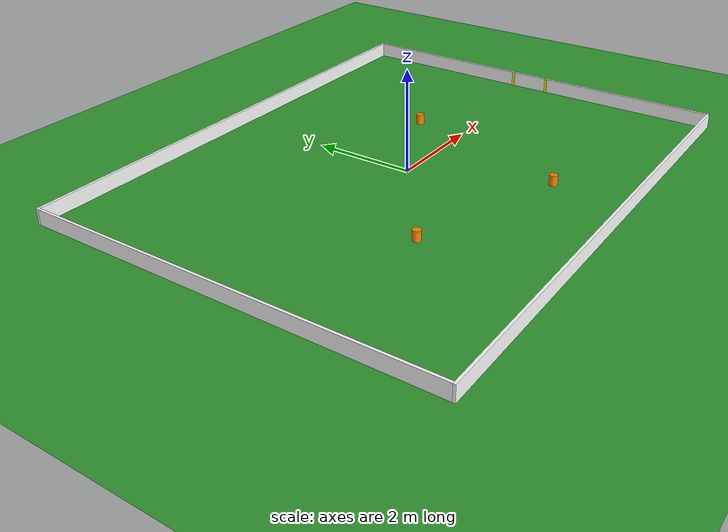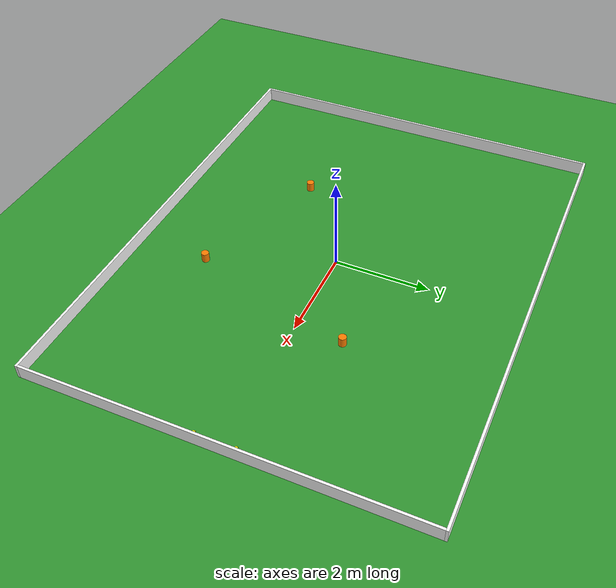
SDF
<?xml version="1.0" ?>
<!--
  RoboCup-style arena for the 3-wheeled omni robot.
  Field: 10 m × 8 m
  Walls are 0.3 m tall white panels.
  A few cylindrical obstacles are placed in the field.
-->
<sdf version="1.9">
  <world name="robocup_field">

    <!-- ─── Physics ──────────────────────────────────────────────── -->
    <physics name="1ms" type="ignored">
      <max_step_size>0.001</max_step_size>
      <real_time_factor>1.0</real_time_factor>
    </physics>

    <!-- ─── Required Gazebo system plugins ───────────────────────── -->
    <plugin filename="gz-sim-physics-system"
            name="gz::sim::systems::Physics"/>
    <plugin filename="gz-sim-user-commands-system"
            name="gz::sim::systems::UserCommands"/>
    <plugin filename="gz-sim-scene-broadcaster-system"
            name="gz::sim::systems::SceneBroadcaster"/>
    <plugin filename="gz-sim-sensors-system"
            name="gz::sim::systems::Sensors">
      <render_engine>ogre2</render_engine>
    </plugin>
    <plugin filename="gz-sim-contact-system"
            name="gz::sim::systems::Contact"/>

    <!-- ─── Lighting ─────────────────────────────────────────────── -->
    <light type="directional" name="sun">
      <cast_shadows>true</cast_shadows>
      <pose>0 0 10 0 0 0</pose>
      <diffuse>0.9 0.9 0.9 1</diffuse>
      <specular>0.3 0.3 0.3 1</specular>
      <direction>-0.5 0.1 -0.9</direction>
    </light>

    <!-- ─── Ground plane (green – RoboCup field) ─────────────────── -->
    <model name="ground_plane">
      <static>true</static>
      <link name="link">
        <collision name="collision">
          <geometry>
            <plane><normal>0 0 1</normal><size>30 30</size></plane>
          </geometry>
          <surface>
            <friction>
              <ode><mu>0.8</mu><mu2>0.8</mu2></ode>
            </friction>
          </surface>
        </collision>
        <visual name="visual">
          <cast_shadows>false</cast_shadows>
          <geometry>
            <plane><normal>0 0 1</normal><size>30 30</size></plane>
          </geometry>
          <material>
            <ambient>0.1 0.5 0.1 1</ambient>
            <diffuse>0.2 0.6 0.2 1</diffuse>
          </material>
        </visual>
      </link>
    </model>

    <!-- ─── Field boundary walls ─────────────────────────────────── -->
    <!-- Field: 10 m × 8 m  →  corners at (±5, ±4)                  -->

    <model name="wall_north">
      <static>true</static>
      <pose>0 4.025 0.15 0 0 0</pose>
      <link name="link">
        <collision name="col"><geometry><box><size>10.1 0.05 0.3</size></box></geometry></collision>
        <visual   name="vis">
          <geometry><box><size>10.1 0.05 0.3</size></box></geometry>
          <material><ambient>1 1 1 1</ambient><diffuse>1 1 1 1</diffuse></material>
        </visual>
      </link>
    </model>

    <model name="wall_south">
      <static>true</static>
      <pose>0 -4.025 0.15 0 0 0</pose>
      <link name="link">
        <collision name="col"><geometry><box><size>10.1 0.05 0.3</size></box></geometry></collision>
        <visual   name="vis">
          <geometry><box><size>10.1 0.05 0.3</size></box></geometry>
          <material><ambient>1 1 1 1</ambient><diffuse>1 1 1 1</diffuse></material>
        </visual>
      </link>
    </model>

    <model name="wall_east">
      <static>true</static>
      <pose>5.025 0 0.15 0 0 0</pose>
      <link name="link">
        <collision name="col"><geometry><box><size>0.05 8.0 0.3</size></box></geometry></collision>
        <visual   name="vis">
          <geometry><box><size>0.05 8.0 0.3</size></box></geometry>
          <material><ambient>1 1 1 1</ambient><diffuse>1 1 1 1</diffuse></material>
        </visual>
      </link>
    </model>

    <model name="wall_west">
      <static>true</static>
      <pose>-5.025 0 0.15 0 0 0</pose>
      <link name="link">
        <collision name="col"><geometry><box><size>0.05 8.0 0.3</size></box></geometry></collision>
        <visual   name="vis">
          <geometry><box><size>0.05 8.0 0.3</size></box></geometry>
          <material><ambient>1 1 1 1</ambient><diffuse>1 1 1 1</diffuse></material>
        </visual>
      </link>
    </model>

    <!-- ─── Cylindrical obstacles (simulate soccer ball / cones) ─── -->
    <model name="obstacle_1">
      <static>true</static>
      <pose>2.0 1.0 0.1 0 0 0</pose>
      <link name="link">
        <collision name="col"><geometry><cylinder><radius>0.08</radius><length>0.2</length></cylinder></geometry></collision>
        <visual   name="vis">
          <geometry><cylinder><radius>0.08</radius><length>0.2</length></cylinder></geometry>
          <material><ambient>1 0.5 0 1</ambient><diffuse>1 0.5 0 1</diffuse></material>
        </visual>
      </link>
    </model>

    <model name="obstacle_2">
      <static>true</static>
      <pose>-2.0 -1.5 0.1 0 0 0</pose>
      <link name="link">
        <collision name="col"><geometry><cylinder><radius>0.08</radius><length>0.2</length></cylinder></geometry></collision>
        <visual   name="vis">
          <geometry><cylinder><radius>0.08</radius><length>0.2</length></cylinder></geometry>
          <material><ambient>1 0.5 0 1</ambient><diffuse>1 0.5 0 1</diffuse></material>
        </visual>
      </link>
    </model>

    <model name="obstacle_3">
      <static>true</static>
      <pose>1.0 -2.5 0.1 0 0 0</pose>
      <link name="link">
        <collision name="col"><geometry><cylinder><radius>0.08</radius><length>0.2</length></cylinder></geometry></collision>
        <visual   name="vis">
          <geometry><cylinder><radius>0.08</radius><length>0.2</length></cylinder></geometry>
          <material><ambient>1 0.5 0 1</ambient><diffuse>1 0.5 0 1</diffuse></material>
        </visual>
      </link>
    </model>

    <!-- ─── Goal markers (box posts at centre of each short wall) ── -->
    <model name="goal_post_east_n">
      <static>true</static>
      <pose>5.0 0.4 0.15 0 0 0</pose>
      <link name="link">
        <collision name="col"><geometry><box><size>0.05 0.05 0.3</size></box></geometry></collision>
        <visual   name="vis">
          <geometry><box><size>0.05 0.05 0.3</size></box></geometry>
          <material><ambient>1 1 0 1</ambient><diffuse>1 1 0 1</diffuse></material>
        </visual>
      </link>
    </model>

    <model name="goal_post_east_s">
      <static>true</static>
      <pose>5.0 -0.4 0.15 0 0 0</pose>
      <link name="link">
        <collision name="col"><geometry><box><size>0.05 0.05 0.3</size></box></geometry></collision>
        <visual   name="vis">
          <geometry><box><size>0.05 0.05 0.3</size></box></geometry>
          <material><ambient>1 1 0 1</ambient><diffuse>1 1 0 1</diffuse></material>
        </visual>
      </link>
    </model>

  </world>
</sdf>
